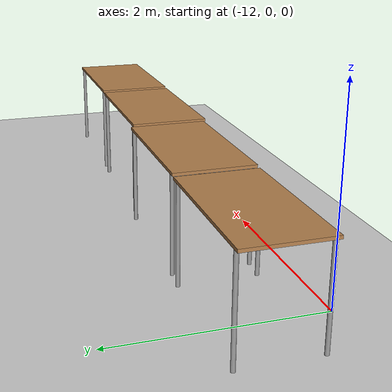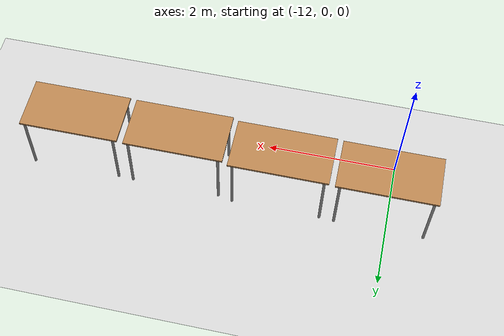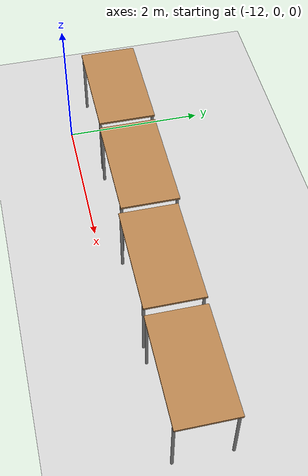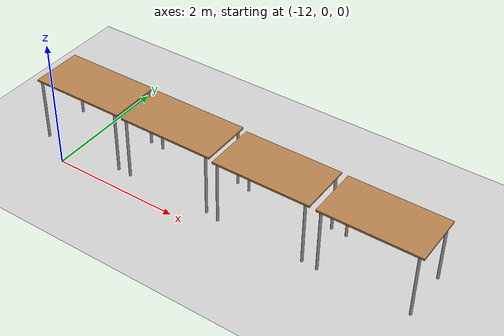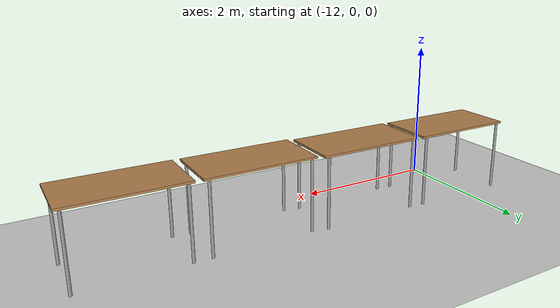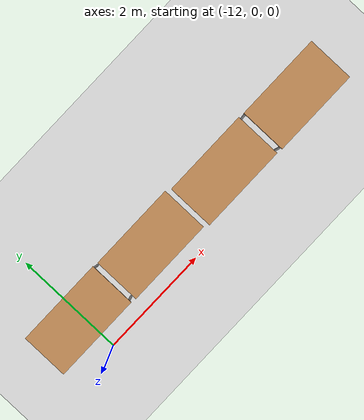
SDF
<sdf version="1.7">
 <world name="empty">
  <scene>
   <shadows>false</shadows>
   <ambient>0.400000006 0.400000006 0.400000006 1</ambient>
   <background>0.699999988 0.699999988 0.699999988 1</background>
  </scene>
  <physics name="1ms" type="ignored">
   <max_step_size>0.001</max_step_size>
   <real_time_factor>1</real_time_factor>
   <real_time_update_rate>25</real_time_update_rate>
  </physics>
  <plugin name="gz::sim::systems::Physics" filename="gz-sim-physics-system"/>
  <plugin name="gz::sim::systems::UserCommands" filename="gz-sim-user-commands-system"/>
  <plugin name="gz::sim::systems::SceneBroadcaster" filename="gz-sim-scene-broadcaster-system"/>
  <plugin name="gz::sim::systems::Sensors" filename="gz-sim-sensors-system">
   <render_engine>ogre2</render_engine>
  </plugin>
  <plugin name="gz::sim::systems::Contact" filename="gz-sim-contact-system"/>
  <gravity>0 0 -9.8000000000000007</gravity>
  <magnetic_field>5.5644999999999998e-06 2.2875799999999999e-05 -4.2388400000000002e-05</magnetic_field>
  <atmosphere type="adiabatic"/>
  <model name="ground_plane">
   <static>true</static>
   <link name="link">
    <collision name="collision">
     <geometry><plane><normal>0 0 1</normal><size>100 100</size></plane></geometry>
    </collision>
    <visual name="visual">
     <geometry><plane><normal>0 0 1</normal><size>100 100</size></plane></geometry>
     <material>
      <ambient>0.800000012 0.800000012 0.800000012 1</ambient>
      <diffuse>0.800000012 0.800000012 0.800000012 1</diffuse>
      <specular>0.800000012 0.800000012 0.800000012 1</specular>
     </material>
    </visual>
    <inertial>
     <mass>1</mass>
     <inertia><ixx>1</ixx><ixy>0</ixy><ixz>0</ixz><iyy>1</iyy><iyz>0</iyz><izz>1</izz></inertia>
    </inertial>
   </link>
  </model>
  <model name="Table">
   <static>true</static>
   <link name="link">
    <collision name="surface">
     <pose>0 0 1 0 0 0</pose>
     <geometry><box><size>1.5 0.80000000000000004 0.029999999999999999</size></box></geometry>
     <surface><friction><ode><mu>0.59999999999999998</mu><mu2>0.59999999999999998</mu2></ode></friction></surface>
    </collision>
    <visual name="visual1">
     <pose>0 0 1 0 0 0</pose>
     <geometry><box><size>1.5 0.80000000000000004 0.029999999999999999</size></box></geometry>
     <material>
      <diffuse>1 1 1 1</diffuse>
      <script><uri>file://media/materials/scripts/gazebo.material</uri><name>Gazebo/Wood</name></script>
      <pbr><metal><albedo_map>model://Table/Table_Diffuse.jpg</albedo_map></metal></pbr>
     </material>
    </visual>
    <collision name="front_left_leg">
     <pose>0.68000000000000005 0.38 0.5 0 0 0</pose>
     <geometry><cylinder><radius>0.02</radius><length>1</length></cylinder></geometry>
    </collision>
    <visual name="front_left_leg">
     <pose>0.68000000000000005 0.38 0.5 0 0 0</pose>
     <geometry><cylinder><radius>0.02</radius><length>1</length></cylinder></geometry>
     <material>
      <diffuse>0.5 0.5 0.5 1</diffuse>
      <script><uri>file://media/materials/scripts/gazebo.material</uri><name>Gazebo/Grey</name></script>
     </material>
    </visual>
    <collision name="front_right_leg">
     <pose>0.68000000000000005 -0.38 0.5 0 0 0</pose>
     <geometry><cylinder><radius>0.02</radius><length>1</length></cylinder></geometry>
    </collision>
    <visual name="front_right_leg">
     <pose>0.68000000000000005 -0.38 0.5 0 0 0</pose>
     <geometry><cylinder><radius>0.02</radius><length>1</length></cylinder></geometry>
     <material>
      <diffuse>0.5 0.5 0.5 1</diffuse>
      <script><uri>file://media/materials/scripts/gazebo.material</uri><name>Gazebo/Grey</name></script>
     </material>
    </visual>
    <collision name="back_right_leg">
     <pose>-0.68000000000000005 -0.38 0.5 0 0 0</pose>
     <geometry><cylinder><radius>0.02</radius><length>1</length></cylinder></geometry>
    </collision>
    <visual name="back_right_leg">
     <pose>-0.68000000000000005 -0.38 0.5 0 0 0</pose>
     <geometry><cylinder><radius>0.02</radius><length>1</length></cylinder></geometry>
     <material>
      <diffuse>0.5 0.5 0.5 1</diffuse>
      <script><uri>file://media/materials/scripts/gazebo.material</uri><name>Gazebo/Grey</name></script>
     </material>
    </visual>
    <collision name="back_left_leg">
     <pose>-0.68000000000000005 0.38 0.5 0 0 0</pose>
     <geometry><cylinder><radius>0.02</radius><length>1</length></cylinder></geometry>
    </collision>
    <visual name="back_left_leg">
     <pose>-0.68000000000000005 0.38 0.5 0 0 0</pose>
     <geometry><cylinder><radius>0.02</radius><length>1</length></cylinder></geometry>
     <material>
      <diffuse>0.5 0.5 0.5 1</diffuse>
      <script><uri>file://media/materials/scripts/gazebo.material</uri><name>Gazebo/Grey</name></script>
     </material>
    </visual>
    <inertial>
     <mass>1</mass>
     <inertia><ixx>1</ixx><ixy>0</ixy><ixz>0</ixz><iyy>1</iyy><iyz>0</iyz><izz>1</izz></inertia>
    </inertial>
   </link>
   <pose>-7.1242815803622044 0.64953268227104566 0 0 0 0</pose>
  </model>
  <model name="Table_0">
   <static>true</static>
   <link name="link">
    <collision name="surface">
     <pose>0 0 1 0 0 0</pose>
     <geometry><box><size>1.5 0.80000000000000004 0.029999999999999999</size></box></geometry>
     <surface><friction><ode><mu>0.59999999999999998</mu><mu2>0.59999999999999998</mu2></ode></friction></surface>
    </collision>
    <visual name="visual1">
     <pose>0 0 1 0 0 0</pose>
     <geometry><box><size>1.5 0.80000000000000004 0.029999999999999999</size></box></geometry>
     <material>
      <diffuse>1 1 1 1</diffuse>
      <script><uri>file://media/materials/scripts/gazebo.material</uri><name>Gazebo/Wood</name></script>
      <pbr><metal><albedo_map>model://Table/Table_Diffuse.jpg</albedo_map></metal></pbr>
     </material>
    </visual>
    <collision name="front_left_leg">
     <pose>0.68000000000000005 0.38 0.5 0 0 0</pose>
     <geometry><cylinder><radius>0.02</radius><length>1</length></cylinder></geometry>
    </collision>
    <visual name="front_left_leg">
     <pose>0.68000000000000005 0.38 0.5 0 0 0</pose>
     <geometry><cylinder><radius>0.02</radius><length>1</length></cylinder></geometry>
     <material>
      <diffuse>0.5 0.5 0.5 1</diffuse>
      <script><uri>file://media/materials/scripts/gazebo.material</uri><name>Gazebo/Grey</name></script>
     </material>
    </visual>
    <collision name="front_right_leg">
     <pose>0.68000000000000005 -0.38 0.5 0 0 0</pose>
     <geometry><cylinder><radius>0.02</radius><length>1</length></cylinder></geometry>
    </collision>
    <visual name="front_right_leg">
     <pose>0.68000000000000005 -0.38 0.5 0 0 0</pose>
     <geometry><cylinder><radius>0.02</radius><length>1</length></cylinder></geometry>
     <material>
      <diffuse>0.5 0.5 0.5 1</diffuse>
      <script><uri>file://media/materials/scripts/gazebo.material</uri><name>Gazebo/Grey</name></script>
     </material>
    </visual>
    <collision name="back_right_leg">
     <pose>-0.68000000000000005 -0.38 0.5 0 0 0</pose>
     <geometry><cylinder><radius>0.02</radius><length>1</length></cylinder></geometry>
    </collision>
    <visual name="back_right_leg">
     <pose>-0.68000000000000005 -0.38 0.5 0 0 0</pose>
     <geometry><cylinder><radius>0.02</radius><length>1</length></cylinder></geometry>
     <material>
      <diffuse>0.5 0.5 0.5 1</diffuse>
      <script><uri>file://media/materials/scripts/gazebo.material</uri><name>Gazebo/Grey</name></script>
     </material>
    </visual>
    <collision name="back_left_leg">
     <pose>-0.68000000000000005 0.38 0.5 0 0 0</pose>
     <geometry><cylinder><radius>0.02</radius><length>1</length></cylinder></geometry>
    </collision>
    <visual name="back_left_leg">
     <pose>-0.68000000000000005 0.38 0.5 0 0 0</pose>
     <geometry><cylinder><radius>0.02</radius><length>1</length></cylinder></geometry>
     <material>
      <diffuse>0.5 0.5 0.5 1</diffuse>
      <script><uri>file://media/materials/scripts/gazebo.material</uri><name>Gazebo/Grey</name></script>
     </material>
    </visual>
    <inertial>
     <mass>1</mass>
     <inertia><ixx>1</ixx><ixy>0</ixy><ixz>0</ixz><iyy>1</iyy><iyz>0</iyz><izz>1</izz></inertia>
    </inertial>
   </link>
   <pose>-8.7200560908542872 0.66237416395084026 0 0 0 0</pose>
  </model>
  <model name="Table_1">
   <static>true</static>
   <link name="link">
    <collision name="surface">
     <pose>0 0 1 0 0 0</pose>
     <geometry><box><size>1.5 0.80000000000000004 0.029999999999999999</size></box></geometry>
     <surface><friction><ode><mu>0.59999999999999998</mu><mu2>0.59999999999999998</mu2></ode></friction></surface>
    </collision>
    <visual name="visual1">
     <pose>0 0 1 0 0 0</pose>
     <geometry><box><size>1.5 0.80000000000000004 0.029999999999999999</size></box></geometry>
     <material>
      <diffuse>1 1 1 1</diffuse>
      <script><uri>file://media/materials/scripts/gazebo.material</uri><name>Gazebo/Wood</name></script>
      <pbr><metal><albedo_map>model://Table/Table_Diffuse.jpg</albedo_map></metal></pbr>
     </material>
    </visual>
    <collision name="front_left_leg">
     <pose>0.68000000000000005 0.38 0.5 0 0 0</pose>
     <geometry><cylinder><radius>0.02</radius><length>1</length></cylinder></geometry>
    </collision>
    <visual name="front_left_leg">
     <pose>0.68000000000000005 0.38 0.5 0 0 0</pose>
     <geometry><cylinder><radius>0.02</radius><length>1</length></cylinder></geometry>
     <material>
      <diffuse>0.5 0.5 0.5 1</diffuse>
      <script><uri>file://media/materials/scripts/gazebo.material</uri><name>Gazebo/Grey</name></script>
     </material>
    </visual>
    <collision name="front_right_leg">
     <pose>0.68000000000000005 -0.38 0.5 0 0 0</pose>
     <geometry><cylinder><radius>0.02</radius><length>1</length></cylinder></geometry>
    </collision>
    <visual name="front_right_leg">
     <pose>0.68000000000000005 -0.38 0.5 0 0 0</pose>
     <geometry><cylinder><radius>0.02</radius><length>1</length></cylinder></geometry>
     <material>
      <diffuse>0.5 0.5 0.5 1</diffuse>
      <script><uri>file://media/materials/scripts/gazebo.material</uri><name>Gazebo/Grey</name></script>
     </material>
    </visual>
    <collision name="back_right_leg">
     <pose>-0.68000000000000005 -0.38 0.5 0 0 0</pose>
     <geometry><cylinder><radius>0.02</radius><length>1</length></cylinder></geometry>
    </collision>
    <visual name="back_right_leg">
     <pose>-0.68000000000000005 -0.38 0.5 0 0 0</pose>
     <geometry><cylinder><radius>0.02</radius><length>1</length></cylinder></geometry>
     <material>
      <diffuse>0.5 0.5 0.5 1</diffuse>
      <script><uri>file://media/materials/scripts/gazebo.material</uri><name>Gazebo/Grey</name></script>
     </material>
    </visual>
    <collision name="back_left_leg">
     <pose>-0.68000000000000005 0.38 0.5 0 0 0</pose>
     <geometry><cylinder><radius>0.02</radius><length>1</length></cylinder></geometry>
    </collision>
    <visual name="back_left_leg">
     <pose>-0.68000000000000005 0.38 0.5 0 0 0</pose>
     <geometry><cylinder><radius>0.02</radius><length>1</length></cylinder></geometry>
     <material>
      <diffuse>0.5 0.5 0.5 1</diffuse>
      <script><uri>file://media/materials/scripts/gazebo.material</uri><name>Gazebo/Grey</name></script>
     </material>
    </visual>
    <inertial>
     <mass>1</mass>
     <inertia><ixx>1</ixx><ixy>0</ixy><ixz>0</ixz><iyy>1</iyy><iyz>0</iyz><izz>1</izz></inertia>
    </inertial>
   </link>
   <pose>-10.301796254472235 0.7103839103565015 0 0 0 0</pose>
  </model>
  <model name="Table_2">
   <static>true</static>
   <link name="link">
    <collision name="surface">
     <pose>0 0 1 0 0 0</pose>
     <geometry><box><size>1.5 0.80000000000000004 0.029999999999999999</size></box></geometry>
     <surface><friction><ode><mu>0.59999999999999998</mu><mu2>0.59999999999999998</mu2></ode></friction></surface>
    </collision>
    <visual name="visual1">
     <pose>0 0 1 0 0 0</pose>
     <geometry><box><size>1.5 0.80000000000000004 0.029999999999999999</size></box></geometry>
     <material>
      <diffuse>1 1 1 1</diffuse>
      <script><uri>file://media/materials/scripts/gazebo.material</uri><name>Gazebo/Wood</name></script>
      <pbr><metal><albedo_map>model://Table/Table_Diffuse.jpg</albedo_map></metal></pbr>
     </material>
    </visual>
    <collision name="front_left_leg">
     <pose>0.68000000000000005 0.38 0.5 0 0 0</pose>
     <geometry><cylinder><radius>0.02</radius><length>1</length></cylinder></geometry>
    </collision>
    <visual name="front_left_leg">
     <pose>0.68000000000000005 0.38 0.5 0 0 0</pose>
     <geometry><cylinder><radius>0.02</radius><length>1</length></cylinder></geometry>
     <material>
      <diffuse>0.5 0.5 0.5 1</diffuse>
      <script><uri>file://media/materials/scripts/gazebo.material</uri><name>Gazebo/Grey</name></script>
     </material>
    </visual>
    <collision name="front_right_leg">
     <pose>0.68000000000000005 -0.38 0.5 0 0 0</pose>
     <geometry><cylinder><radius>0.02</radius><length>1</length></cylinder></geometry>
    </collision>
    <visual name="front_right_leg">
     <pose>0.68000000000000005 -0.38 0.5 0 0 0</pose>
     <geometry><cylinder><radius>0.02</radius><length>1</length></cylinder></geometry>
     <material>
      <diffuse>0.5 0.5 0.5 1</diffuse>
      <script><uri>file://media/materials/scripts/gazebo.material</uri><name>Gazebo/Grey</name></script>
     </material>
    </visual>
    <collision name="back_right_leg">
     <pose>-0.68000000000000005 -0.38 0.5 0 0 0</pose>
     <geometry><cylinder><radius>0.02</radius><length>1</length></cylinder></geometry>
    </collision>
    <visual name="back_right_leg">
     <pose>-0.68000000000000005 -0.38 0.5 0 0 0</pose>
     <geometry><cylinder><radius>0.02</radius><length>1</length></cylinder></geometry>
     <material>
      <diffuse>0.5 0.5 0.5 1</diffuse>
      <script><uri>file://media/materials/scripts/gazebo.material</uri><name>Gazebo/Grey</name></script>
     </material>
    </visual>
    <collision name="back_left_leg">
     <pose>-0.68000000000000005 0.38 0.5 0 0 0</pose>
     <geometry><cylinder><radius>0.02</radius><length>1</length></cylinder></geometry>
    </collision>
    <visual name="back_left_leg">
     <pose>-0.68000000000000005 0.38 0.5 0 0 0</pose>
     <geometry><cylinder><radius>0.02</radius><length>1</length></cylinder></geometry>
     <material>
      <diffuse>0.5 0.5 0.5 1</diffuse>
      <script><uri>file://media/materials/scripts/gazebo.material</uri><name>Gazebo/Grey</name></script>
     </material>
    </visual>
    <inertial>
     <mass>1</mass>
     <inertia><ixx>1</ixx><ixy>0</ixy><ixz>0</ixz><iyy>1</iyy><iyz>0</iyz><izz>1</izz></inertia>
    </inertial>
   </link>
   <pose>-11.888137323929314 0.72617550771639472 0 0 0 0</pose>
  </model>
  <light name="sun" type="directional">
   <visualize>false</visualize>
   <pose>0 0 10 0 0 0</pose>
   <intensity>0.5</intensity>
   <direction>-0.5 0.10000000000000001 -0.90000000000000002</direction>
   <diffuse>0.800000012 0.800000012 0.800000012 1</diffuse>
   <specular>0.200000003 0.200000003 0.200000003 1</specular>
   <attenuation>
    <range>1000</range>
    <linear>0.01</linear>
    <constant>0.90000000000000002</constant>
    <quadratic>0.001</quadratic>
   </attenuation>
   <spot><inner_angle>0</inner_angle><outer_angle>0</outer_angle><falloff>0</falloff></spot>
  </light>
  <light name="spotlight" type="spot">
   <visualize>false</visualize>
   <pose>10 10 6 0 0 0</pose>
   <intensity>3</intensity>
   <direction>0 0 -1</direction>
   <diffuse>0.5 0.5 0.5 1</diffuse>
   <specular>0.5 0.5 0.5 1</specular>
   <attenuation>
    <range>48</range>
    <linear>0.71296298503875732</linear>
    <constant>0.19556452333927155</constant>
    <quadratic>0.0010000000474974513</quadratic>
   </attenuation>
   <spot>
    <inner_angle>2.0999999046325684</inner_angle>
    <outer_angle>2.5</outer_angle>
    <falloff>2.7999999523162842</falloff>
   </spot>
  </light>
  <light name="spotlight2" type="spot">
   <visualize>false</visualize>
   <pose>10 -10 6 0 0 0</pose>
   <intensity>3</intensity>
   <direction>0 0 -1</direction>
   <diffuse>0.5 0.5 0.5 1</diffuse>
   <specular>0.5 0.5 0.5 1</specular>
   <attenuation>
    <range>48</range>
    <linear>0.71296298503875732</linear>
    <constant>0.19556452333927155</constant>
    <quadratic>0.0010000000474974513</quadratic>
   </attenuation>
   <spot>
    <inner_angle>2.0999999046325684</inner_angle>
    <outer_angle>2.5</outer_angle>
    <falloff>2.7999999523162842</falloff>
   </spot>
  </light>
  <light name="spotlight3" type="spot">
   <visualize>false</visualize>
   <pose>10 0 6 0 0 0</pose>
   <intensity>3</intensity>
   <direction>0 0 -1</direction>
   <diffuse>0.5 0.5 0.5 1</diffuse>
   <specular>0.5 0.5 0.5 1</specular>
   <attenuation>
    <range>48</range>
    <linear>0.71296298503875732</linear>
    <constant>0.19556452333927155</constant>
    <quadratic>0.0010000000474974513</quadratic>
   </attenuation>
   <spot>
    <inner_angle>2.0999999046325684</inner_angle>
    <outer_angle>2.5</outer_angle>
    <falloff>2.7999999523162842</falloff>
   </spot>
  </light>
  <light name="spotlight4" type="spot">
   <visualize>false</visualize>
   <pose>-10 10 7 0 0 0</pose>
   <intensity>9</intensity>
   <direction>0 0 -1</direction>
   <diffuse>0.4 0.8 0.8 1</diffuse>
   <specular>0.9 0.1 0.1 1</specular>
   <attenuation>
    <range>48</range>
    <linear>0.71296298503875732</linear>
    <constant>0.19556452333927155</constant>
    <quadratic>0.0010000000474974513</quadratic>
   </attenuation>
   <spot><inner_angle>1.7</inner_angle><outer_angle>2</outer_angle><falloff>2.7999999523162842</falloff></spot>
  </light>
  <light name="spotlight5" type="spot">
   <visualize>false</visualize>
   <pose>-10 -7 7 0 0 0</pose>
   <intensity>9</intensity>
   <direction>0 0 -1</direction>
   <diffuse>0.4 0.8 0.8 1</diffuse>
   <specular>0.5 0.5 0.5 1</specular>
   <attenuation>
    <range>48</range>
    <linear>0.71296298503875732</linear>
    <constant>0.19556452333927155</constant>
    <quadratic>0.0010000000474974513</quadratic>
   </attenuation>
   <spot><inner_angle>1.7</inner_angle><outer_angle>2.0</outer_angle><falloff>2.7999999523162842</falloff></spot>
  </light>
 </world>
</sdf>
